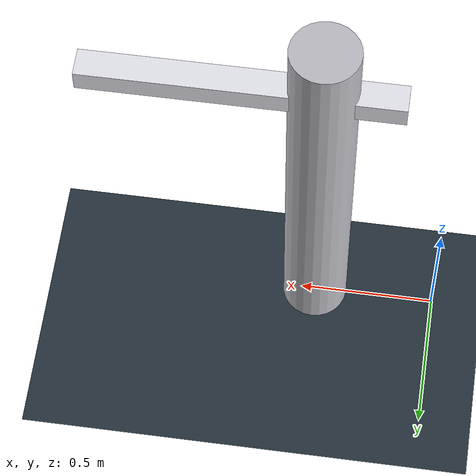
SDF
<?xml version="1.0" ?>
<sdf version="1.6">
  <world name="offshore_wind_turbine">
    <gravity>0 0 -9.81</gravity>
    <physics type="ode">
      <max_step_size>0.001</max_step_size>
      <real_time_update_rate>1000</real_time_update_rate>
      <ode><solver><type>quick</type><iters>50</iters></solver><constraints><cfm>0.000001</cfm><erp>0.2</erp></constraints></ode>
    </physics>
    <!-- 自包含地面与光源：避免 model:// 下载阻塞离线实验室环境。 -->
    <light name="sun" type="directional"><cast_shadows>true</cast_shadows><pose>0 0 10 0 0 0</pose><diffuse>0.8 0.8 0.8 1</diffuse><specular>0.2 0.2 0.2 1</specular><attenuation><range>1000</range><constant>0.9</constant><linear>0.01</linear><quadratic>0.001</quadratic></attenuation><direction>-0.5 0.1 -0.9</direction></light>
    <model name="ground_plane"><static>true</static><link name="link"><collision name="collision"><geometry><plane><normal>0 0 1</normal><size>20 20</size></plane></geometry></collision><visual name="visual"><geometry><plane><normal>0 0 1</normal><size>20 20</size></plane></geometry><material><ambient>0.15 0.20 0.24 1</ambient></material></visual></link></model>

    <!-- 可碰撞的简化塔筒与叶片；其 MoveIt 对应物由 wind_turbine_scene.py 发布。 -->
    <model name="turbine_tower"><static>true</static><pose>0.45 0 0.8 0 0 0</pose><link name="link"><collision name="collision"><geometry><cylinder><radius>0.12</radius><length>1.6</length></cylinder></geometry></collision><visual name="visual"><geometry><cylinder><radius>0.12</radius><length>1.6</length></cylinder></geometry><material><ambient>0.75 0.75 0.78 1</ambient></material></visual></link></model>
    <model name="turbine_blade"><static>true</static><pose>0.72 0 1.35 0 0 0</pose><link name="link"><collision name="collision"><geometry><box><size>1.1 0.10 0.08</size></box></geometry></collision><visual name="visual"><geometry><box><size>1.1 0.10 0.08</size></box></geometry><material><ambient>0.92 0.92 0.95 1</ambient></material></visual></link></model>
  </world>
</sdf>
